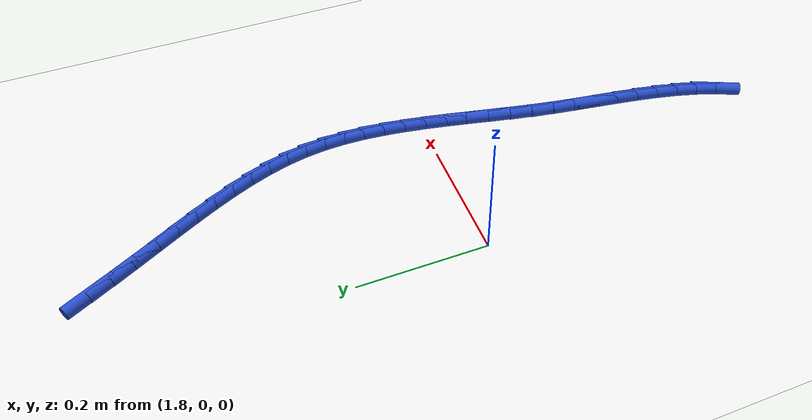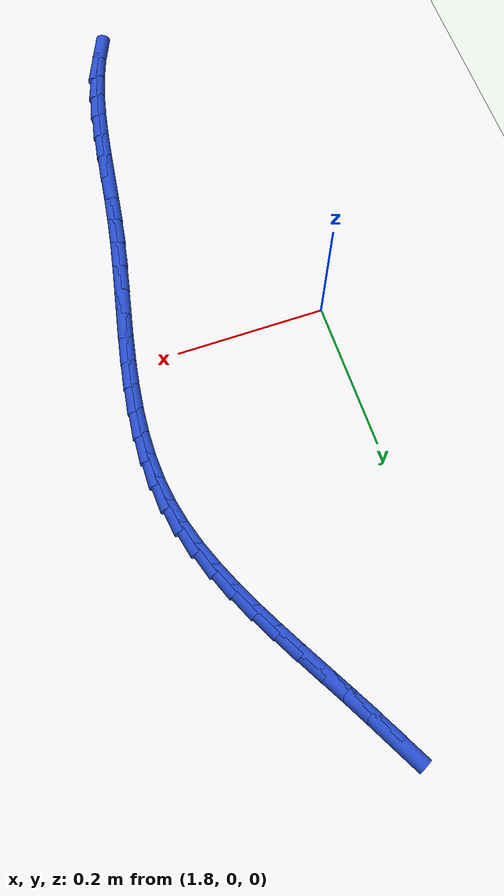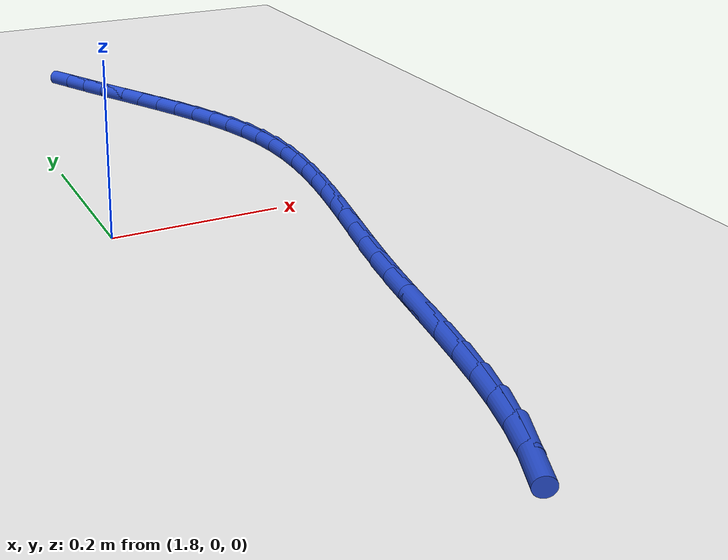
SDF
<sdf version="1.6">
 <world name="default">
  <model name="ground_plane">
   <static>1</static>
   <link name="link">
    <collision name="collision">
     <geometry><plane><normal>0 0 1</normal><size>100 100</size></plane></geometry>
     <surface><friction><ode><mu>100</mu><mu2>50</mu2></ode></friction></surface>
    </collision>
    <visual name="visual">
     <cast_shadows>0</cast_shadows>
     <geometry><plane><normal>0 0 1</normal><size>100 100</size></plane></geometry>
     <material>
      <script><uri>file://media/materials/scripts/gazebo.material</uri><name>Gazebo/WhiteGlow</name></script>
     </material>
    </visual>
   </link>
  </model>
  <model name="line">
   <link name="link_79">
    <pose>1.913388773425916 0.5394185441431892 0.01 0 1.57 -1.0827367992076897</pose>
    <collision name="collision">
     <geometry><cylinder><radius>0.01</radius><length>0.08</length></cylinder></geometry>
    </collision>
    <visual name="visual">
     <material>
      <script><name>Gazebo/Blue</name><uri>file://media/materials/scripts/gazebo.material</uri></script>
     </material>
     <geometry><cylinder><radius>0.01</radius><length>0.08</length></cylinder></geometry>
    </visual>
   </link>
   <link name="link_80">
    <pose>1.9304235392516698 0.507331853089092 0.01 0 1.57 -1.0730169813747679</pose>
    <collision name="collision">
     <geometry><cylinder><radius>0.01</radius><length>0.08</length></cylinder></geometry>
    </collision>
    <visual name="visual">
     <material>
      <script><name>Gazebo/Blue</name><uri>file://media/materials/scripts/gazebo.material</uri></script>
     </material>
     <geometry><cylinder><radius>0.01</radius><length>0.08</length></cylinder></geometry>
    </visual>
   </link>
   <link name="link_81">
    <pose>1.947753174305734 0.47544205726778477 0.01 0 1.57 -1.0615178111396029</pose>
    <collision name="collision">
     <geometry><cylinder><radius>0.01</radius><length>0.08</length></cylinder></geometry>
    </collision>
    <visual name="visual">
     <material>
      <script><name>Gazebo/Blue</name><uri>file://media/materials/scripts/gazebo.material</uri></script>
     </material>
     <geometry><cylinder><radius>0.01</radius><length>0.08</length></cylinder></geometry>
    </visual>
   </link>
   <link name="link_82">
    <pose>1.9653807006164625 0.44387480889406616 0.01 0 1.57 -1.058973586492995</pose>
    <collision name="collision">
     <geometry><cylinder><radius>0.01</radius><length>0.08</length></cylinder></geometry>
    </collision>
    <visual name="visual">
     <material>
      <script><name>Gazebo/Blue</name><uri>file://media/materials/scripts/gazebo.material</uri></script>
     </material>
     <geometry><cylinder><radius>0.01</radius><length>0.08</length></cylinder></geometry>
    </visual>
   </link>
   <link name="link_83">
    <pose>1.9829696773926528 0.4125640031110895 0.01 0 1.57 -1.0666285698193907</pose>
    <collision name="collision">
     <geometry><cylinder><radius>0.01</radius><length>0.08</length></cylinder></geometry>
    </collision>
    <visual name="visual">
     <material>
      <script><name>Gazebo/Blue</name><uri>file://media/materials/scripts/gazebo.material</uri></script>
     </material>
     <geometry><cylinder><radius>0.01</radius><length>0.08</length></cylinder></geometry>
    </visual>
   </link>
   <link name="link_84">
    <pose>2.0001501184793344 0.38142458582706057 0.01 0 1.57 -1.084852090959974</pose>
    <collision name="collision">
     <geometry><cylinder><radius>0.01</radius><length>0.08</length></cylinder></geometry>
    </collision>
    <visual name="visual">
     <material>
      <script><name>Gazebo/Blue</name><uri>file://media/materials/scripts/gazebo.material</uri></script>
     </material>
     <geometry><cylinder><radius>0.01</radius><length>0.08</length></cylinder></geometry>
    </visual>
   </link>
   <link name="link_85">
    <pose>2.0165520377215356 0.3503715029501856 0.01 0 1.57 -1.114193599897058</pose>
    <collision name="collision">
     <geometry><cylinder><radius>0.01</radius><length>0.08</length></cylinder></geometry>
    </collision>
    <visual name="visual">
     <material>
      <script><name>Gazebo/Blue</name><uri>file://media/materials/scripts/gazebo.material</uri></script>
     </material>
     <geometry><cylinder><radius>0.01</radius><length>0.08</length></cylinder></geometry>
    </visual>
   </link>
   <link name="link_86">
    <pose>2.0318054489642843 0.31931970038867097 0.01 0 1.57 -1.1553409719901264</pose>
    <collision name="collision">
     <geometry><cylinder><radius>0.01</radius><length>0.08</length></cylinder></geometry>
    </collision>
    <visual name="visual">
     <material>
      <script><name>Gazebo/Blue</name><uri>file://media/materials/scripts/gazebo.material</uri></script>
     </material>
     <geometry><cylinder><radius>0.01</radius><length>0.08</length></cylinder></geometry>
    </visual>
   </link>
   <link name="link_87">
    <pose>2.0455403660526104 0.28818412405072236 0.01 0 1.57 -1.2090244137424493</pose>
    <collision name="collision">
     <geometry><cylinder><radius>0.01</radius><length>0.08</length></cylinder></geometry>
    </collision>
    <visual name="visual">
     <material>
      <script><name>Gazebo/Blue</name><uri>file://media/materials/scripts/gazebo.material</uri></script>
     </material>
     <geometry><cylinder><radius>0.01</radius><length>0.08</length></cylinder></geometry>
    </visual>
   </link>
   <link name="link_88">
    <pose>2.0573868028315414 0.25687971984454583 0.01 0 1.57 -1.2758406183553999</pose>
    <collision name="collision">
     <geometry><cylinder><radius>0.01</radius><length>0.08</length></cylinder></geometry>
    </collision>
    <visual name="visual">
     <material>
      <script><name>Gazebo/Blue</name><uri>file://media/materials/scripts/gazebo.material</uri></script>
     </material>
     <geometry><cylinder><radius>0.01</radius><length>0.08</length></cylinder></geometry>
    </visual>
   </link>
   <link name="link_89">
    <pose>2.0669747731461054 0.2253214336783476 0.01 0 1.57 -1.3559772226406124</pose>
    <collision name="collision">
     <geometry><cylinder><radius>0.01</radius><length>0.08</length></cylinder></geometry>
    </collision>
    <visual name="visual">
     <material>
      <script><name>Gazebo/Blue</name><uri>file://media/materials/scripts/gazebo.material</uri></script>
     </material>
     <geometry><cylinder><radius>0.01</radius><length>0.08</length></cylinder></geometry>
    </visual>
   </link>
   <link name="link_90">
    <pose>2.0739342908477214 0.19342421146128386 0.01 0 1.57 -1.4451469124473524</pose>
    <collision name="collision">
     <geometry><cylinder><radius>0.01</radius><length>0.08</length></cylinder></geometry>
    </collision>
    <visual name="visual">
     <material>
      <script><name>Gazebo/Blue</name><uri>file://media/materials/scripts/gazebo.material</uri></script>
     </material>
     <geometry><cylinder><radius>0.01</radius><length>0.08</length></cylinder></geometry>
    </visual>
   </link>
   <link name="link_91">
    <pose>2.0780146994697204 0.16112073847730235 0.01 0 1.57 -1.527329049487268</pose>
    <collision name="collision">
     <geometry><cylinder><radius>0.01</radius><length>0.08</length></cylinder></geometry>
    </collision>
    <visual name="visual">
     <material>
      <script><name>Gazebo/Blue</name><uri>file://media/materials/scripts/gazebo.material</uri></script>
     </material>
     <geometry><cylinder><radius>0.01</radius><length>0.08</length></cylinder></geometry>
    </visual>
   </link>
   <link name="link_92">
    <pose>2.0794372746208554 0.1284138567377328 0.01 0 1.57 1.543685162596548</pose>
    <collision name="collision">
     <geometry><cylinder><radius>0.01</radius><length>0.08</length></cylinder></geometry>
    </collision>
    <visual name="visual">
     <material>
      <script><name>Gazebo/Blue</name><uri>file://media/materials/scripts/gazebo.material</uri></script>
     </material>
     <geometry><cylinder><radius>0.01</radius><length>0.08</length></cylinder></geometry>
    </visual>
   </link>
   <link name="link_93">
    <pose>2.078539943428639 0.09532374949690693 0.01 0 1.57 1.4849379882250329</pose>
    <collision name="collision">
     <geometry><cylinder><radius>0.01</radius><length>0.08</length></cylinder></geometry>
    </collision>
    <visual name="visual">
     <material>
      <script><name>Gazebo/Blue</name><uri>file://media/materials/scripts/gazebo.material</uri></script>
     </material>
     <geometry><cylinder><radius>0.01</radius><length>0.08</length></cylinder></geometry>
    </visual>
   </link>
   <link name="link_94">
    <pose>2.0756606330205867 0.061870600009155494 0.01 0 1.57 1.4377439668855678</pose>
    <collision name="collision">
     <geometry><cylinder><radius>0.01</radius><length>0.08</length></cylinder></geometry>
    </collision>
    <visual name="visual">
     <material>
      <script><name>Gazebo/Blue</name><uri>file://media/materials/scripts/gazebo.material</uri></script>
     </material>
     <geometry><cylinder><radius>0.01</radius><length>0.08</length></cylinder></geometry>
    </visual>
   </link>
   <link name="link_95">
    <pose>2.0711372705242104 0.028074591528810193 0.01 0 1.57 1.4015713252697541</pose>
    <collision name="collision">
     <geometry><cylinder><radius>0.01</radius><length>0.08</length></cylinder></geometry>
    </collision>
    <visual name="visual">
     <material>
      <script><name>Gazebo/Blue</name><uri>file://media/materials/scripts/gazebo.material</uri></script>
     </material>
     <geometry><cylinder><radius>0.01</radius><length>0.08</length></cylinder></geometry>
    </visual>
   </link>
   <link name="link_96">
    <pose>2.0653077830670252 -0.006044092689797604 0.01 0 1.57 1.3758196645053349</pose>
    <collision name="collision">
     <geometry><cylinder><radius>0.01</radius><length>0.08</length></cylinder></geometry>
    </collision>
    <visual name="visual">
     <material>
      <script><name>Gazebo/Blue</name><uri>file://media/materials/scripts/gazebo.material</uri></script>
     </material>
     <geometry><cylinder><radius>0.01</radius><length>0.08</length></cylinder></geometry>
    </visual>
   </link>
   <link name="link_97">
    <pose>2.058510097776543 -0.04046526939233651 0.01 0 1.57 1.3599373297078245</pose>
    <collision name="collision">
     <geometry><cylinder><radius>0.01</radius><length>0.08</length></cylinder></geometry>
    </collision>
    <visual name="visual">
     <material>
      <script><name>Gazebo/Blue</name><uri>file://media/materials/scripts/gazebo.material</uri></script>
     </material>
     <geometry><cylinder><radius>0.01</radius><length>0.08</length></cylinder></geometry>
    </visual>
   </link>
   <link name="link_98">
    <pose>2.051082141780279 -0.0751687553244744 0.01 0 1.57 1.3534860149892443</pose>
    <collision name="collision">
     <geometry><cylinder><radius>0.01</radius><length>0.08</length></cylinder></geometry>
    </collision>
    <visual name="visual">
     <material>
      <script><name>Gazebo/Blue</name><uri>file://media/materials/scripts/gazebo.material</uri></script>
     </material>
     <geometry><cylinder><radius>0.01</radius><length>0.08</length></cylinder></geometry>
    </visual>
   </link>
   <link name="link_99">
    <pose>2.0433618422057465 -0.11013436723188134 0.01 0 1.57 1.356168883933831</pose>
    <collision name="collision">
     <geometry><cylinder><radius>0.01</radius><length>0.08</length></cylinder></geometry>
    </collision>
    <visual name="visual">
     <material>
      <script><name>Gazebo/Blue</name><uri>file://media/materials/scripts/gazebo.material</uri></script>
     </material>
     <geometry><cylinder><radius>0.01</radius><length>0.08</length></cylinder></geometry>
    </visual>
   </link>
   <link name="link_100">
    <pose>2.0356871261804583 -0.1453419218602252 0.01 0 1.57 1.3678341088244472</pose>
    <collision name="collision">
     <geometry><cylinder><radius>0.01</radius><length>0.08</length></cylinder></geometry>
    </collision>
    <visual name="visual">
     <material>
      <script><name>Gazebo/Blue</name><uri>file://media/materials/scripts/gazebo.material</uri></script>
     </material>
     <geometry><cylinder><radius>0.01</radius><length>0.08</length></cylinder></geometry>
    </visual>
   </link>
   <link name="link_101">
    <pose>2.028395920831929 -0.18077123595517464 0.01 0 1.57 1.3884008963587509</pose>
    <collision name="collision">
     <geometry><cylinder><radius>0.01</radius><length>0.08</length></cylinder></geometry>
    </collision>
    <visual name="visual">
     <material>
      <script><name>Gazebo/Blue</name><uri>file://media/materials/scripts/gazebo.material</uri></script>
     </material>
     <geometry><cylinder><radius>0.01</radius><length>0.08</length></cylinder></geometry>
    </visual>
   </link>
   <link name="link_102">
    <pose>2.021824059099686 -0.2164016341513058 0.01 0 1.57 1.4112042450720554</pose>
    <collision name="collision">
     <geometry><cylinder><radius>0.01</radius><length>0.08</length></cylinder></geometry>
    </collision>
    <visual name="visual">
     <material>
      <script><name>Gazebo/Blue</name><uri>file://media/materials/scripts/gazebo.material</uri></script>
     </material>
     <geometry><cylinder><radius>0.01</radius><length>0.08</length></cylinder></geometry>
    </visual>
   </link>
   <link name="link_103">
    <pose>2.01606893639584 -0.25215641089256186 0.01 0 1.57 1.4234982377593228</pose>
    <collision name="collision">
     <geometry><cylinder><radius>0.01</radius><length>0.08</length></cylinder></geometry>
    </collision>
    <visual name="visual">
     <material>
      <script><name>Gazebo/Blue</name><uri>file://media/materials/scripts/gazebo.material</uri></script>
     </material>
     <geometry><cylinder><radius>0.01</radius><length>0.08</length></cylinder></geometry>
    </visual>
   </link>
   <link name="link_104">
    <pose>2.010772702415628 -0.2878518828976183 0.01 0 1.57 1.423828780677648</pose>
    <collision name="collision">
     <geometry><cylinder><radius>0.01</radius><length>0.08</length></cylinder></geometry>
    </collision>
    <visual name="visual">
     <material>
      <script><name>Gazebo/Blue</name><uri>file://media/materials/scripts/gazebo.material</uri></script>
     </material>
     <geometry><cylinder><radius>0.01</radius><length>0.08</length></cylinder></geometry>
    </visual>
   </link>
   <link name="link_105">
    <pose>2.005526279218891 -0.3232923289555166 0.01 0 1.57 1.4119365724738435</pose>
    <collision name="collision">
     <geometry><cylinder><radius>0.01</radius><length>0.08</length></cylinder></geometry>
    </collision>
    <visual name="visual">
     <material>
      <script><name>Gazebo/Blue</name><uri>file://media/materials/scripts/gazebo.material</uri></script>
     </material>
     <geometry><cylinder><radius>0.01</radius><length>0.08</length></cylinder></geometry>
    </visual>
   </link>
   <link name="link_106">
    <pose>1.9999205888654703 -0.35828202785530117 0.01 0 1.57 1.3872863962431425</pose>
    <collision name="collision">
     <geometry><cylinder><radius>0.01</radius><length>0.08</length></cylinder></geometry>
    </collision>
    <visual name="visual">
     <material>
      <script><name>Gazebo/Blue</name><uri>file://media/materials/scripts/gazebo.material</uri></script>
     </material>
     <geometry><cylinder><radius>0.01</radius><length>0.08</length></cylinder></geometry>
    </visual>
   </link>
   <link name="link_107">
    <pose>1.9935465534152075 -0.3926252583860139 0.01 0 1.57 1.349091991656647</pose>
    <collision name="collision">
     <geometry><cylinder><radius>0.01</radius><length>0.08</length></cylinder></geometry>
    </collision>
    <visual name="visual">
     <material>
      <script><name>Gazebo/Blue</name><uri>file://media/materials/scripts/gazebo.material</uri></script>
     </material>
     <geometry><cylinder><radius>0.01</radius><length>0.08</length></cylinder></geometry>
    </visual>
   </link>
   <link name="link_108">
    <pose>1.985995094927944 -0.42612629933669727 0.01 0 1.57 1.2964089668172203</pose>
    <collision name="collision">
     <geometry><cylinder><radius>0.01</radius><length>0.08</length></cylinder></geometry>
    </collision>
    <visual name="visual">
     <material>
      <script><name>Gazebo/Blue</name><uri>file://media/materials/scripts/gazebo.material</uri></script>
     </material>
     <geometry><cylinder><radius>0.01</radius><length>0.08</length></cylinder></geometry>
    </visual>
   </link>
   <link name="link_109">
    <pose>1.9768571354635216 -0.45858942949639403 0.01 0 1.57 1.2283363229090194</pose>
    <collision name="collision">
     <geometry><cylinder><radius>0.01</radius><length>0.08</length></cylinder></geometry>
    </collision>
    <visual name="visual">
     <material>
      <script><name>Gazebo/Blue</name><uri>file://media/materials/scripts/gazebo.material</uri></script>
     </material>
     <geometry><cylinder><radius>0.01</radius><length>0.08</length></cylinder></geometry>
    </visual>
   </link>
   <link name="link_110">
    <pose>1.9657235970817812 -0.4898189276541467 0.01 0 1.57 1.1443725722405136</pose>
    <collision name="collision">
     <geometry><cylinder><radius>0.01</radius><length>0.08</length></cylinder></geometry>
    </collision>
    <visual name="visual">
     <material>
      <script><name>Gazebo/Blue</name><uri>file://media/materials/scripts/gazebo.material</uri></script>
     </material>
     <geometry><cylinder><radius>0.01</radius><length>0.08</length></cylinder></geometry>
    </visual>
   </link>
  </model>
 </world>
</sdf>
